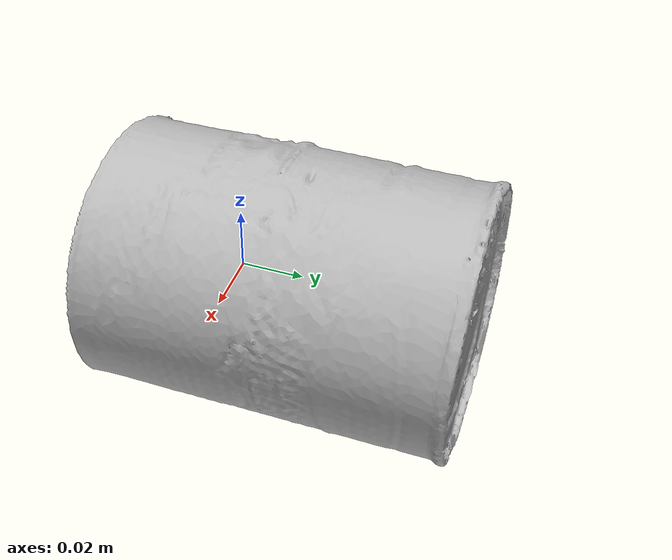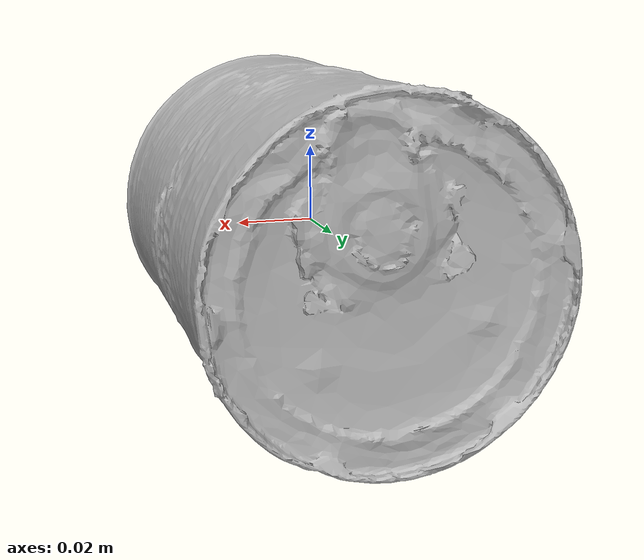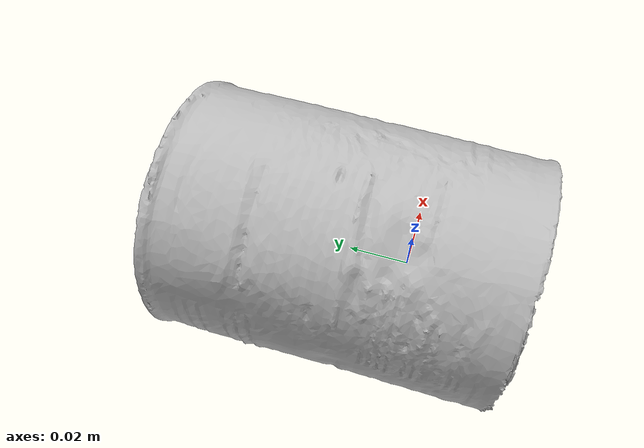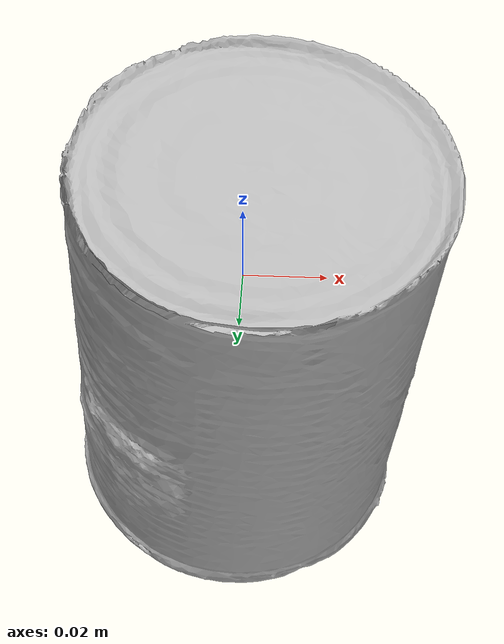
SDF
<?xml version='1.0'?>
<sdf version="1.4">
  <model name="PineappleSlices">
    <static>false</static>
    <link name="link">
      <inertial>
        <pose>0.0024821286580378457 0.02016298709154956 -0.00040758660891613446 1.5715955731470472 0.8361840539402121 -3.133033010375148</pose>
        <mass>0.03653996503614625</mass>
        <inertia>
          <ixx>0.00010349179725086917</ixx>
          <ixy>2.402629513499433e-20</ixy>
          <ixz>-9.611061060079187e-21</ixz>
          <iyy>0.00010319121321462133</iyy>
          <iyz>9.363991949109703e-21</iyz>
          <izz>6.150845781020466e-05</izz>
        </inertia>
      </inertial>
      <collision name="collision">
        <geometry>
          <mesh>
            <!-- Use a downsampled mesh for collisions -->
            <uri>model:///PineappleSlices/PineappleSlices_250_collision.obj</uri>
	        </mesh>
        </geometry>
        <surface>
      </surface>
      </collision>
      <visual name="visual">
        <geometry>
          <mesh>
            <uri>model:///PineappleSlices/PineappleSlices_25k_tex.obj</uri>
	        </mesh>
        </geometry>
        <material>
          <script>
            <uri>model:///PineappleSlices/PineappleSlices.material</uri>
            <name>PineappleSlices</name>
          </script>
        </material>
      </visual>
    </link>
  </model>
</sdf>
